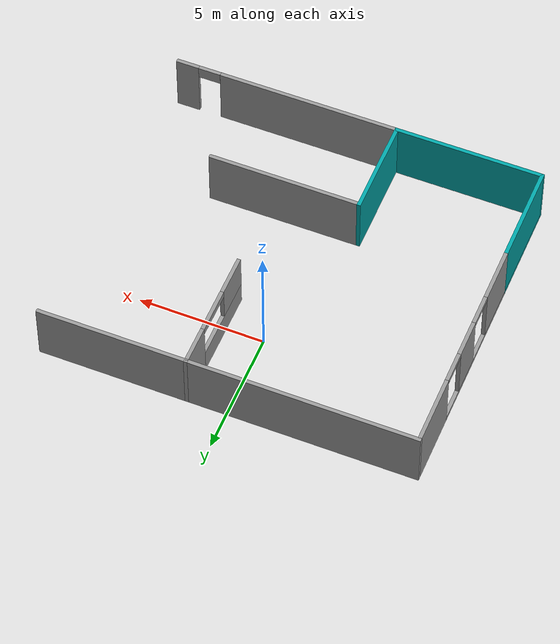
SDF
<sdf version="1.7">
 <model name="my_building_p4">
  <link name="Wall_27">
   <pose>0 3.46508 0 0 -0 3.14159</pose>
   <visual name="Wall_27_Visual">
    <pose>0 0 1.25 0 -0 0</pose>
    <geometry><box><size>15 0.15 2.5</size></box></geometry>
    <material>
     <script><uri>file://media/materials/scripts/gazebo.material</uri><name>Gazebo/Grey</name></script>
     <ambient>1 1 1 1</ambient>
     <shader type="pixel"/>
    </material>
    <meta><layer>0</layer></meta>
   </visual>
   <collision name="Wall_27_Collision">
    <pose>0 0 1.25 0 -0 0</pose>
    <geometry><box><size>15 0.15 2.5</size></box></geometry>
    <surface>
     <friction>
      <ode><mu>1</mu><mu2>1</mu2><fdir1>0 0 0</fdir1><slip1>0</slip1><slip2>0</slip2></ode>
      <torsional>
       <coefficient>1</coefficient>
       <patch_radius>0</patch_radius>
       <surface_radius>0</surface_radius>
       <use_patch_radius>1</use_patch_radius>
       <ode><slip>0</slip></ode>
      </torsional>
     </friction>
     <bounce><restitution_coefficient>0</restitution_coefficient><threshold>1e+06</threshold></bounce>
     <contact>
      <collide_without_contact>0</collide_without_contact>
      <collide_without_contact_bitmask>1</collide_without_contact_bitmask>
      <collide_bitmask>1</collide_bitmask>
      <ode>
       <soft_cfm>0</soft_cfm>
       <soft_erp>0.2</soft_erp>
       <kp>1e+13</kp>
       <kd>1</kd>
       <max_vel>0.01</max_vel>
       <min_depth>0</min_depth>
      </ode>
      <bullet>
       <split_impulse>1</split_impulse>
       <split_impulse_penetration_threshold>-0.01</split_impulse_penetration_threshold>
       <soft_cfm>0</soft_cfm>
       <soft_erp>0.2</soft_erp>
       <kp>1e+13</kp>
       <kd>1</kd>
      </bullet>
     </contact>
    </surface>
   </collision>
  </link>
  <link name="Wall_28">
   <pose>-7.42497 -2.95624 0 0 0 -1.5708</pose>
   <inertial>
    <mass>1</mass>
    <inertia><ixx>1</ixx><ixy>0</ixy><ixz>0</ixz><iyy>1</iyy><iyz>0</iyz><izz>1</izz></inertia>
   </inertial>
   <visual name="Wall_28_Visual_3">
    <pose>4.5 0 1.325 0 -0 0</pose>
    <geometry><box><size>4 0.15 2.35</size></box></geometry>
    <material>
     <script><uri>file://media/materials/scripts/gazebo.material</uri><name>Gazebo/Grey</name></script>
     <ambient>0 0.647 0.655 1</ambient>
     <shader type="pixel"><normal_map>__default__</normal_map></shader>
     <diffuse>0 0.647 0.655 1</diffuse>
     <specular>0.01 0.01 0.01 1</specular>
     <emissive>0 0 0 1</emissive>
    </material>
    <meta><layer>0</layer></meta>
   </visual>
   <visual name="Wall_28_Visual_2">
    <pose>4.5 0 0.075 0 -0 0</pose>
    <geometry><box><size>4 0.15 0.15</size></box></geometry>
    <material>
     <script><uri>file://media/materials/scripts/gazebo.material</uri><name>Gazebo/Grey</name></script>
     <ambient>0 0.647 0.655 1</ambient>
     <shader type="pixel"><normal_map>__default__</normal_map></shader>
     <diffuse>0 0.647 0.655 1</diffuse>
     <specular>0.01 0.01 0.01 1</specular>
     <emissive>0 0 0 1</emissive>
    </material>
    <meta><layer>0</layer></meta>
   </visual>
   <visual name="Wall_28_Visual_1">
    <pose>-0.6 0 0.075 0 -0 0</pose>
    <geometry><box><size>6.2 0.15 0.15</size></box></geometry>
    <material>
     <script><uri>file://media/materials/scripts/gazebo.material</uri><name>Gazebo/Grey</name></script>
     <ambient>1 1 1 1</ambient>
     <shader type="pixel"><normal_map>__default__</normal_map></shader>
     <diffuse>0.7 0.7 0.7 1</diffuse>
     <specular>0.01 0.01 0.01 1</specular>
     <emissive>0 0 0 1</emissive>
    </material>
    <meta><layer>0</layer></meta>
   </visual>
   <visual name="Wall_28_Visual_5">
    <pose>-1.663 0 1.325 0 -0 0</pose>
    <geometry><box><size>1.5 0.15 2.35</size></box></geometry>
    <material>
     <script><uri>file://media/materials/scripts/gazebo.material</uri><name>Gazebo/Grey</name></script>
     <ambient>1 1 1 1</ambient>
     <shader type="pixel"><normal_map>__default__</normal_map></shader>
     <diffuse>0.7 0.7 0.7 1</diffuse>
     <specular>0.01 0.01 0.01 1</specular>
     <emissive>0 0 0 1</emissive>
    </material>
    <meta><layer>0</layer></meta>
   </visual>
   <visual name="Wall_28_Visual_8">
    <pose>-3.038 0 2.4 0 -0 0</pose>
    <geometry><box><size>1.25 0.15 0.2</size></box></geometry>
    <material>
     <script><uri>file://media/materials/scripts/gazebo.material</uri><name>Gazebo/Grey</name></script>
     <ambient>1 1 1 1</ambient>
     <shader type="pixel"><normal_map>__default__</normal_map></shader>
     <diffuse>0.7 0.7 0.7 1</diffuse>
     <specular>0.01 0.01 0.01 1</specular>
     <emissive>0 0 0 1</emissive>
    </material>
    <meta><layer>0</layer></meta>
   </visual>
   <visual name="Wall_28_Visual_0">
    <pose>-5.012 0 1.25 0 -0 0</pose>
    <geometry><box><size>2.7 0.15 2.5</size></box></geometry>
    <material>
     <script><uri>file://media/materials/scripts/gazebo.material</uri><name>Gazebo/Grey</name></script>
     <ambient>1 1 1 1</ambient>
     <shader type="pixel"><normal_map>__default__</normal_map></shader>
     <diffuse>0.7 0.7 0.7 1</diffuse>
     <specular>0.01 0.01 0.01 1</specular>
     <emissive>0 0 0 1</emissive>
    </material>
    <meta><layer>0</layer></meta>
   </visual>
   <visual name="Wall_28_Visual_6">
    <pose>-0.288 0 2.4 0 -0 0</pose>
    <geometry><box><size>1.25 0.15 0.2</size></box></geometry>
    <material>
     <script><uri>file://media/materials/scripts/gazebo.material</uri><name>Gazebo/Grey</name></script>
     <ambient>1 1 1 1</ambient>
     <shader type="pixel"><normal_map>__default__</normal_map></shader>
     <diffuse>0.7 0.7 0.7 1</diffuse>
     <specular>0.01 0.01 0.01 1</specular>
     <emissive>0 0 0 1</emissive>
    </material>
    <meta><layer>0</layer></meta>
   </visual>
   <collision name="Wall_28_Collision_5">
    <pose>-1.663 0 1.325 0 -0 0</pose>
    <geometry><box><size>1.5 0.15 2.35</size></box></geometry>
    <surface>
     <friction>
      <ode><mu>1</mu><mu2>1</mu2><fdir1>0 0 0</fdir1><slip1>0</slip1><slip2>0</slip2></ode>
      <torsional>
       <coefficient>1</coefficient>
       <patch_radius>0</patch_radius>
       <surface_radius>0</surface_radius>
       <use_patch_radius>1</use_patch_radius>
       <ode><slip>0</slip></ode>
      </torsional>
     </friction>
     <bounce><restitution_coefficient>0</restitution_coefficient><threshold>1e+06</threshold></bounce>
     <contact>
      <collide_without_contact>0</collide_without_contact>
      <collide_without_contact_bitmask>1</collide_without_contact_bitmask>
      <collide_bitmask>1</collide_bitmask>
      <ode>
       <soft_cfm>0</soft_cfm>
       <soft_erp>0.2</soft_erp>
       <kp>1e+13</kp>
       <kd>1</kd>
       <max_vel>0.01</max_vel>
       <min_depth>0</min_depth>
      </ode>
      <bullet>
       <split_impulse>1</split_impulse>
       <split_impulse_penetration_threshold>-0.01</split_impulse_penetration_threshold>
       <soft_cfm>0</soft_cfm>
       <soft_erp>0.2</soft_erp>
       <kp>1e+13</kp>
       <kd>1</kd>
      </bullet>
     </contact>
    </surface>
   </collision>
   <collision name="Wall_28_Collision_6">
    <pose>-0.288 0 2.4 0 -0 0</pose>
    <geometry><box><size>1.25 0.15 0.2</size></box></geometry>
    <surface>
     <friction>
      <ode><mu>1</mu><mu2>1</mu2><fdir1>0 0 0</fdir1><slip1>0</slip1><slip2>0</slip2></ode>
      <torsional>
       <coefficient>1</coefficient>
       <patch_radius>0</patch_radius>
       <surface_radius>0</surface_radius>
       <use_patch_radius>1</use_patch_radius>
       <ode><slip>0</slip></ode>
      </torsional>
     </friction>
     <bounce><restitution_coefficient>0</restitution_coefficient><threshold>1e+06</threshold></bounce>
     <contact>
      <collide_without_contact>0</collide_without_contact>
      <collide_without_contact_bitmask>1</collide_without_contact_bitmask>
      <collide_bitmask>1</collide_bitmask>
      <ode>
       <soft_cfm>0</soft_cfm>
       <soft_erp>0.2</soft_erp>
       <kp>1e+13</kp>
       <kd>1</kd>
       <max_vel>0.01</max_vel>
       <min_depth>0</min_depth>
      </ode>
      <bullet>
       <split_impulse>1</split_impulse>
       <split_impulse_penetration_threshold>-0.01</split_impulse_penetration_threshold>
       <soft_cfm>0</soft_cfm>
       <soft_erp>0.2</soft_erp>
       <kp>1e+13</kp>
       <kd>1</kd>
      </bullet>
     </contact>
    </surface>
   </collision>
   <collision name="Wall_28_Collision_8">
    <pose>-3.038 0 2.4 0 -0 0</pose>
    <geometry><box><size>1.25 0.15 0.2</size></box></geometry>
    <surface>
     <friction>
      <ode><mu>1</mu><mu2>1</mu2><fdir1>0 0 0</fdir1><slip1>0</slip1><slip2>0</slip2></ode>
      <torsional>
       <coefficient>1</coefficient>
       <patch_radius>0</patch_radius>
       <surface_radius>0</surface_radius>
       <use_patch_radius>1</use_patch_radius>
       <ode><slip>0</slip></ode>
      </torsional>
     </friction>
     <bounce><restitution_coefficient>0</restitution_coefficient><threshold>1e+06</threshold></bounce>
     <contact>
      <collide_without_contact>0</collide_without_contact>
      <collide_without_contact_bitmask>1</collide_without_contact_bitmask>
      <collide_bitmask>1</collide_bitmask>
      <ode>
       <soft_cfm>0</soft_cfm>
       <soft_erp>0.2</soft_erp>
       <kp>1e+13</kp>
       <kd>1</kd>
       <max_vel>0.01</max_vel>
       <min_depth>0</min_depth>
      </ode>
      <bullet>
       <split_impulse>1</split_impulse>
       <split_impulse_penetration_threshold>-0.01</split_impulse_penetration_threshold>
       <soft_cfm>0</soft_cfm>
       <soft_erp>0.2</soft_erp>
       <kp>1e+13</kp>
       <kd>1</kd>
      </bullet>
     </contact>
    </surface>
   </collision>
   <collision name="Wall_28_Collision_0">
    <pose>-5.012 0 1.25 0 -0 0</pose>
    <geometry><box><size>2.7 0.15 2.5</size></box></geometry>
    <surface>
     <friction>
      <ode><mu>1</mu><mu2>1</mu2><fdir1>0 0 0</fdir1><slip1>0</slip1><slip2>0</slip2></ode>
      <torsional>
       <coefficient>1</coefficient>
       <patch_radius>0</patch_radius>
       <surface_radius>0</surface_radius>
       <use_patch_radius>1</use_patch_radius>
       <ode><slip>0</slip></ode>
      </torsional>
     </friction>
     <bounce><restitution_coefficient>0</restitution_coefficient><threshold>1e+06</threshold></bounce>
     <contact>
      <collide_without_contact>0</collide_without_contact>
      <collide_without_contact_bitmask>1</collide_without_contact_bitmask>
      <collide_bitmask>1</collide_bitmask>
      <ode>
       <soft_cfm>0</soft_cfm>
       <soft_erp>0.2</soft_erp>
       <kp>1e+13</kp>
       <kd>1</kd>
       <max_vel>0.01</max_vel>
       <min_depth>0</min_depth>
      </ode>
      <bullet>
       <split_impulse>1</split_impulse>
       <split_impulse_penetration_threshold>-0.01</split_impulse_penetration_threshold>
       <soft_cfm>0</soft_cfm>
       <soft_erp>0.2</soft_erp>
       <kp>1e+13</kp>
       <kd>1</kd>
      </bullet>
     </contact>
    </surface>
   </collision>
   <collision name="Wall_28_Collision_1">
    <pose>-0.6 0 0.075 0 -0 0</pose>
    <geometry><box><size>6.2 0.15 0.15</size></box></geometry>
    <surface>
     <friction>
      <ode><mu>1</mu><mu2>1</mu2><fdir1>0 0 0</fdir1><slip1>0</slip1><slip2>0</slip2></ode>
      <torsional>
       <coefficient>1</coefficient>
       <patch_radius>0</patch_radius>
       <surface_radius>0</surface_radius>
       <use_patch_radius>1</use_patch_radius>
       <ode><slip>0</slip></ode>
      </torsional>
     </friction>
     <bounce><restitution_coefficient>0</restitution_coefficient><threshold>1e+06</threshold></bounce>
     <contact>
      <collide_without_contact>0</collide_without_contact>
      <collide_without_contact_bitmask>1</collide_without_contact_bitmask>
      <collide_bitmask>1</collide_bitmask>
      <ode>
       <soft_cfm>0</soft_cfm>
       <soft_erp>0.2</soft_erp>
       <kp>1e+13</kp>
       <kd>1</kd>
       <max_vel>0.01</max_vel>
       <min_depth>0</min_depth>
      </ode>
      <bullet>
       <split_impulse>1</split_impulse>
       <split_impulse_penetration_threshold>-0.01</split_impulse_penetration_threshold>
       <soft_cfm>0</soft_cfm>
       <soft_erp>0.2</soft_erp>
       <kp>1e+13</kp>
       <kd>1</kd>
      </bullet>
     </contact>
    </surface>
   </collision>
   <collision name="Wall_28_Collision_3">
    <pose>4.5 0 1.325 0 -0 0</pose>
    <geometry><box><size>4 0.15 2.35</size></box></geometry>
    <surface>
     <friction>
      <ode><mu>1</mu><mu2>1</mu2><fdir1>0 0 0</fdir1><slip1>0</slip1><slip2>0</slip2></ode>
      <torsional>
       <coefficient>1</coefficient>
       <patch_radius>0</patch_radius>
       <surface_radius>0</surface_radius>
       <use_patch_radius>1</use_patch_radius>
       <ode><slip>0</slip></ode>
      </torsional>
     </friction>
     <bounce><restitution_coefficient>0</restitution_coefficient><threshold>1e+06</threshold></bounce>
     <contact>
      <collide_without_contact>0</collide_without_contact>
      <collide_without_contact_bitmask>1</collide_without_contact_bitmask>
      <collide_bitmask>1</collide_bitmask>
      <ode>
       <soft_cfm>0</soft_cfm>
       <soft_erp>0.2</soft_erp>
       <kp>1e+13</kp>
       <kd>1</kd>
       <max_vel>0.01</max_vel>
       <min_depth>0</min_depth>
      </ode>
      <bullet>
       <split_impulse>1</split_impulse>
       <split_impulse_penetration_threshold>-0.01</split_impulse_penetration_threshold>
       <soft_cfm>0</soft_cfm>
       <soft_erp>0.2</soft_erp>
       <kp>1e+13</kp>
       <kd>1</kd>
      </bullet>
     </contact>
    </surface>
   </collision>
   <collision name="Wall_28_Collision_2">
    <pose>4.5 0 0.075 0 -0 0</pose>
    <geometry><box><size>4 0.15 0.15</size></box></geometry>
    <surface>
     <friction>
      <ode><mu>1</mu><mu2>1</mu2><fdir1>0 0 0</fdir1><slip1>0</slip1><slip2>0</slip2></ode>
      <torsional>
       <coefficient>1</coefficient>
       <patch_radius>0</patch_radius>
       <surface_radius>0</surface_radius>
       <use_patch_radius>1</use_patch_radius>
       <ode><slip>0</slip></ode>
      </torsional>
     </friction>
     <bounce><restitution_coefficient>0</restitution_coefficient><threshold>1e+06</threshold></bounce>
     <contact>
      <collide_without_contact>0</collide_without_contact>
      <collide_without_contact_bitmask>1</collide_without_contact_bitmask>
      <collide_bitmask>1</collide_bitmask>
      <ode>
       <soft_cfm>0</soft_cfm>
       <soft_erp>0.2</soft_erp>
       <kp>1e+13</kp>
       <kd>1</kd>
       <max_vel>0.01</max_vel>
       <min_depth>0</min_depth>
      </ode>
      <bullet>
       <split_impulse>1</split_impulse>
       <split_impulse_penetration_threshold>-0.01</split_impulse_penetration_threshold>
       <soft_cfm>0</soft_cfm>
       <soft_erp>0.2</soft_erp>
       <kp>1e+13</kp>
       <kd>1</kd>
      </bullet>
     </contact>
    </surface>
   </collision>
  </link>
  <link name="Wall_28_clone">
   <pose>-7.42533 -5.43108 0 0 0 -1.5708</pose>
   <inertial>
    <mass>1</mass>
    <inertia><ixx>1</ixx><ixy>0</ixy><ixz>0</ixz><iyy>1</iyy><iyz>0</iyz><izz>1</izz></inertia>
   </inertial>
   <visual name="Wall_28_Visual_5">
    <pose>-1.058 0 1.325 0 -0 0</pose>
    <geometry><box><size>2.16667 0.15 2.35</size></box></geometry>
    <material>
     <script><uri>file://media/materials/scripts/gazebo.material</uri><name>Gazebo/Grey</name></script>
     <ambient>1 1 1 1</ambient>
     <shader type="pixel"><normal_map>__default__</normal_map></shader>
     <diffuse>0.7 0.7 0.7 1</diffuse>
     <specular>0.01 0.01 0.01 1</specular>
     <emissive>0 0 0 1</emissive>
    </material>
    <meta><layer>0</layer></meta>
   </visual>
   <collision name="Wall_28_Collision_5">
    <pose>-1.058 0 1.325 0 -0 0</pose>
    <geometry><box><size>2.16667 0.15 2.35</size></box></geometry>
    <surface>
     <friction>
      <ode><mu>1</mu><mu2>1</mu2><fdir1>0 0 0</fdir1><slip1>0</slip1><slip2>0</slip2></ode>
      <torsional>
       <coefficient>1</coefficient>
       <patch_radius>0</patch_radius>
       <surface_radius>0</surface_radius>
       <use_patch_radius>1</use_patch_radius>
       <ode><slip>0</slip></ode>
      </torsional>
     </friction>
     <bounce><restitution_coefficient>0</restitution_coefficient><threshold>1e+06</threshold></bounce>
     <contact>
      <collide_without_contact>0</collide_without_contact>
      <collide_without_contact_bitmask>1</collide_without_contact_bitmask>
      <collide_bitmask>1</collide_bitmask>
      <ode>
       <soft_cfm>0</soft_cfm>
       <soft_erp>0.2</soft_erp>
       <kp>1e+13</kp>
       <kd>1</kd>
       <max_vel>0.01</max_vel>
       <min_depth>0</min_depth>
      </ode>
      <bullet>
       <split_impulse>1</split_impulse>
       <split_impulse_penetration_threshold>-0.01</split_impulse_penetration_threshold>
       <soft_cfm>0</soft_cfm>
       <soft_erp>0.2</soft_erp>
       <kp>1e+13</kp>
       <kd>1</kd>
      </bullet>
     </contact>
    </surface>
   </collision>
  </link>
  <link name="Wall_29">
   <pose>-4.5 -9.38492 0 0 -0 0</pose>
   <inertial>
    <mass>1</mass>
    <inertia><ixx>1</ixx><ixy>0</ixy><ixz>0</ixz><iyy>1</iyy><iyz>0</iyz><izz>1</izz></inertia>
   </inertial>
   <visual name="Wall_29_Visual">
    <pose>0 0 1.25 0 -0 0</pose>
    <geometry><box><size>6 0.15 2.5</size></box></geometry>
    <material>
     <script><uri>file://media/materials/scripts/gazebo.material</uri><name>Gazebo/Grey</name></script>
     <ambient>0 0.647 0.655 1</ambient>
     <shader type="pixel"><normal_map>__default__</normal_map></shader>
     <diffuse>0 0.647 0.655 1</diffuse>
     <specular>0.01 0.01 0.01 1</specular>
     <emissive>0 0 0 1</emissive>
    </material>
    <meta><layer>0</layer></meta>
   </visual>
   <collision name="Wall_29_Collision">
    <pose>0 0 1.25 0 -0 0</pose>
    <geometry><box><size>6 0.15 2.5</size></box></geometry>
    <surface>
     <friction>
      <ode><mu>1</mu><mu2>1</mu2><fdir1>0 0 0</fdir1><slip1>0</slip1><slip2>0</slip2></ode>
      <torsional>
       <coefficient>1</coefficient>
       <patch_radius>0</patch_radius>
       <surface_radius>0</surface_radius>
       <use_patch_radius>1</use_patch_radius>
       <ode><slip>0</slip></ode>
      </torsional>
     </friction>
     <bounce><restitution_coefficient>0</restitution_coefficient><threshold>1e+06</threshold></bounce>
     <contact>
      <collide_without_contact>0</collide_without_contact>
      <collide_without_contact_bitmask>1</collide_without_contact_bitmask>
      <collide_bitmask>1</collide_bitmask>
      <ode>
       <soft_cfm>0</soft_cfm>
       <soft_erp>0.2</soft_erp>
       <kp>1e+13</kp>
       <kd>1</kd>
       <max_vel>0.01</max_vel>
       <min_depth>0</min_depth>
      </ode>
      <bullet>
       <split_impulse>1</split_impulse>
       <split_impulse_penetration_threshold>-0.01</split_impulse_penetration_threshold>
       <soft_cfm>0</soft_cfm>
       <soft_erp>0.2</soft_erp>
       <kp>1e+13</kp>
       <kd>1</kd>
      </bullet>
     </contact>
    </surface>
   </collision>
  </link>
  <link name="Wall_30">
   <pose>-1.57502 -7.45997 0 0 -0 1.57081</pose>
   <inertial>
    <mass>1</mass>
    <inertia><ixx>1</ixx><ixy>0</ixy><ixz>0</ixz><iyy>1</iyy><iyz>0</iyz><izz>1</izz></inertia>
   </inertial>
   <visual name="Wall_30_Visual">
    <pose>0 0 1.25 0 -0 0</pose>
    <geometry><box><size>3.99989 0.15 2.5</size></box></geometry>
    <material>
     <script><uri>file://media/materials/scripts/gazebo.material</uri><name>Gazebo/Grey</name></script>
     <ambient>0 0.647 0.655 1</ambient>
     <shader type="pixel"><normal_map>__default__</normal_map></shader>
     <diffuse>0 0.647 0.655 1</diffuse>
     <specular>0.01 0.01 0.01 1</specular>
     <emissive>0 0 0 1</emissive>
    </material>
    <meta><layer>0</layer></meta>
   </visual>
   <collision name="Wall_30_Collision">
    <pose>0 0 1.25 0 -0 0</pose>
    <geometry><box><size>3.99989 0.15 2.5</size></box></geometry>
    <surface>
     <friction>
      <ode><mu>1</mu><mu2>1</mu2><fdir1>0 0 0</fdir1><slip1>0</slip1><slip2>0</slip2></ode>
      <torsional>
       <coefficient>1</coefficient>
       <patch_radius>0</patch_radius>
       <surface_radius>0</surface_radius>
       <use_patch_radius>1</use_patch_radius>
       <ode><slip>0</slip></ode>
      </torsional>
     </friction>
     <bounce><restitution_coefficient>0</restitution_coefficient><threshold>1e+06</threshold></bounce>
     <contact>
      <collide_without_contact>0</collide_without_contact>
      <collide_without_contact_bitmask>1</collide_without_contact_bitmask>
      <collide_bitmask>1</collide_bitmask>
      <ode>
       <soft_cfm>0</soft_cfm>
       <soft_erp>0.2</soft_erp>
       <kp>1e+13</kp>
       <kd>1</kd>
       <max_vel>0.01</max_vel>
       <min_depth>0</min_depth>
      </ode>
      <bullet>
       <split_impulse>1</split_impulse>
       <split_impulse_penetration_threshold>-0.01</split_impulse_penetration_threshold>
       <soft_cfm>0</soft_cfm>
       <soft_erp>0.2</soft_erp>
       <kp>1e+13</kp>
       <kd>1</kd>
      </bullet>
     </contact>
    </surface>
   </collision>
  </link>
  <link name="Wall_32">
   <pose>2.925 -9.38492 0 0 -0 0</pose>
   <inertial>
    <mass>1</mass>
    <inertia><ixx>1</ixx><ixy>0</ixy><ixz>0</ixz><iyy>1</iyy><iyz>0</iyz><izz>1</izz></inertia>
   </inertial>
   <visual name="Wall_32_Visual_1">
    <pose>4.11059 0 1.25 0 -0 0</pose>
    <geometry><box><size>0.928826 0.15 2.5</size></box></geometry>
    <material>
     <script><uri>file://media/materials/scripts/gazebo.material</uri><name>Gazebo/Grey</name></script>
     <ambient>1 1 1 1</ambient>
     <shader type="pixel"><normal_map>__default__</normal_map></shader>
     <diffuse>0.7 0.7 0.7 1</diffuse>
     <specular>0.01 0.01 0.01 1</specular>
     <emissive>0 0 0 1</emissive>
    </material>
    <meta><layer>0</layer></meta>
   </visual>
   <visual name="Wall_32_Visual_2">
    <pose>3.19617 0 2.25 0 -0 0</pose>
    <geometry><box><size>0.9 0.15 0.5</size></box></geometry>
    <material>
     <script><uri>file://media/materials/scripts/gazebo.material</uri><name>Gazebo/Grey</name></script>
     <ambient>1 1 1 1</ambient>
     <shader type="pixel"><normal_map>__default__</normal_map></shader>
     <diffuse>0.7 0.7 0.7 1</diffuse>
     <specular>0.01 0.01 0.01 1</specular>
     <emissive>0 0 0 1</emissive>
    </material>
    <meta><layer>0</layer></meta>
   </visual>
   <visual name="Wall_32_Visual_0">
    <pose>-0.84 0 1.25 0 -0 0</pose>
    <geometry><box><size>7.17 0.15 2.5</size></box></geometry>
    <material>
     <script><uri>file://media/materials/scripts/gazebo.material</uri><name>Gazebo/Grey</name></script>
     <ambient>1 1 1 1</ambient>
     <shader type="pixel"><normal_map>__default__</normal_map></shader>
     <diffuse>0.7 0.7 0.7 1</diffuse>
     <specular>0.01 0.01 0.01 1</specular>
     <emissive>0 0 0 1</emissive>
    </material>
    <meta><layer>0</layer></meta>
   </visual>
   <collision name="Wall_32_Collision_1">
    <pose>4.11059 0 1.25 0 -0 0</pose>
    <geometry><box><size>0.928826 0.15 2.5</size></box></geometry>
    <surface>
     <friction>
      <ode><mu>1</mu><mu2>1</mu2><fdir1>0 0 0</fdir1><slip1>0</slip1><slip2>0</slip2></ode>
      <torsional>
       <coefficient>1</coefficient>
       <patch_radius>0</patch_radius>
       <surface_radius>0</surface_radius>
       <use_patch_radius>1</use_patch_radius>
       <ode><slip>0</slip></ode>
      </torsional>
     </friction>
     <bounce><restitution_coefficient>0</restitution_coefficient><threshold>1e+06</threshold></bounce>
     <contact>
      <collide_without_contact>0</collide_without_contact>
      <collide_without_contact_bitmask>1</collide_without_contact_bitmask>
      <collide_bitmask>1</collide_bitmask>
      <ode>
       <soft_cfm>0</soft_cfm>
       <soft_erp>0.2</soft_erp>
       <kp>1e+13</kp>
       <kd>1</kd>
       <max_vel>0.01</max_vel>
       <min_depth>0</min_depth>
      </ode>
      <bullet>
       <split_impulse>1</split_impulse>
       <split_impulse_penetration_threshold>-0.01</split_impulse_penetration_threshold>
       <soft_cfm>0</soft_cfm>
       <soft_erp>0.2</soft_erp>
       <kp>1e+13</kp>
       <kd>1</kd>
      </bullet>
     </contact>
    </surface>
   </collision>
   <collision name="Wall_32_Collision_0">
    <pose>-0.84 0 1.25 0 -0 0</pose>
    <geometry><box><size>7.17 0.15 2.5</size></box></geometry>
    <surface>
     <friction>
      <ode><mu>1</mu><mu2>1</mu2><fdir1>0 0 0</fdir1><slip1>0</slip1><slip2>0</slip2></ode>
      <torsional>
       <coefficient>1</coefficient>
       <patch_radius>0</patch_radius>
       <surface_radius>0</surface_radius>
       <use_patch_radius>1</use_patch_radius>
       <ode><slip>0</slip></ode>
      </torsional>
     </friction>
     <bounce><restitution_coefficient>0</restitution_coefficient><threshold>1e+06</threshold></bounce>
     <contact>
      <collide_without_contact>0</collide_without_contact>
      <collide_without_contact_bitmask>1</collide_without_contact_bitmask>
      <collide_bitmask>1</collide_bitmask>
      <ode>
       <soft_cfm>0</soft_cfm>
       <soft_erp>0.2</soft_erp>
       <kp>1e+13</kp>
       <kd>1</kd>
       <max_vel>0.01</max_vel>
       <min_depth>0</min_depth>
      </ode>
      <bullet>
       <split_impulse>1</split_impulse>
       <split_impulse_penetration_threshold>-0.01</split_impulse_penetration_threshold>
       <soft_cfm>0</soft_cfm>
       <soft_erp>0.2</soft_erp>
       <kp>1e+13</kp>
       <kd>1</kd>
      </bullet>
     </contact>
    </surface>
   </collision>
   <collision name="Wall_32_Collision_2">
    <pose>3.19617 0 2.25 0 -0 0</pose>
    <geometry><box><size>0.9 0.15 0.5</size></box></geometry>
    <surface>
     <friction>
      <ode><mu>1</mu><mu2>1</mu2><fdir1>0 0 0</fdir1><slip1>0</slip1><slip2>0</slip2></ode>
      <torsional>
       <coefficient>1</coefficient>
       <patch_radius>0</patch_radius>
       <surface_radius>0</surface_radius>
       <use_patch_radius>1</use_patch_radius>
       <ode><slip>0</slip></ode>
      </torsional>
     </friction>
     <bounce><restitution_coefficient>0</restitution_coefficient><threshold>1e+06</threshold></bounce>
     <contact>
      <collide_without_contact>0</collide_without_contact>
      <collide_without_contact_bitmask>1</collide_without_contact_bitmask>
      <collide_bitmask>1</collide_bitmask>
      <ode>
       <soft_cfm>0</soft_cfm>
       <soft_erp>0.2</soft_erp>
       <kp>1e+13</kp>
       <kd>1</kd>
       <max_vel>0.01</max_vel>
       <min_depth>0</min_depth>
      </ode>
      <bullet>
       <split_impulse>1</split_impulse>
       <split_impulse_penetration_threshold>-0.01</split_impulse_penetration_threshold>
       <soft_cfm>0</soft_cfm>
       <soft_erp>0.2</soft_erp>
       <kp>1e+13</kp>
       <kd>1</kd>
      </bullet>
     </contact>
    </surface>
   </collision>
  </link>
  <link name="Wall_36">
   <pose>1.49997 -5.53503 0 0 -0 0</pose>
   <inertial>
    <mass>1</mass>
    <inertia><ixx>1</ixx><ixy>0</ixy><ixz>0</ixz><iyy>1</iyy><iyz>0</iyz><izz>1</izz></inertia>
   </inertial>
   <visual name="Wall_36_Visual">
    <pose>0 0 1.25 0 -0 0</pose>
    <geometry><box><size>6 0.15 2.5</size></box></geometry>
    <material>
     <script><uri>file://media/materials/scripts/gazebo.material</uri><name>Gazebo/Grey</name></script>
     <ambient>1 1 1 1</ambient>
     <shader type="pixel"><normal_map>__default__</normal_map></shader>
     <diffuse>0.7 0.7 0.7 1</diffuse>
     <specular>0.01 0.01 0.01 1</specular>
     <emissive>0 0 0 1</emissive>
    </material>
    <meta><layer>0</layer></meta>
   </visual>
   <collision name="Wall_36_Collision">
    <pose>0 0 1.25 0 -0 0</pose>
    <geometry><box><size>6 0.15 2.5</size></box></geometry>
    <surface>
     <friction>
      <ode><mu>1</mu><mu2>1</mu2><fdir1>0 0 0</fdir1><slip1>0</slip1><slip2>0</slip2></ode>
      <torsional>
       <coefficient>1</coefficient>
       <patch_radius>0</patch_radius>
       <surface_radius>0</surface_radius>
       <use_patch_radius>1</use_patch_radius>
       <ode><slip>0</slip></ode>
      </torsional>
     </friction>
     <bounce><restitution_coefficient>0</restitution_coefficient><threshold>1e+06</threshold></bounce>
     <contact>
      <collide_without_contact>0</collide_without_contact>
      <collide_without_contact_bitmask>1</collide_without_contact_bitmask>
      <collide_bitmask>1</collide_bitmask>
      <ode>
       <soft_cfm>0</soft_cfm>
       <soft_erp>0.2</soft_erp>
       <kp>1e+13</kp>
       <kd>1</kd>
       <max_vel>0.01</max_vel>
       <min_depth>0</min_depth>
      </ode>
      <bullet>
       <split_impulse>1</split_impulse>
       <split_impulse_penetration_threshold>-0.01</split_impulse_penetration_threshold>
       <soft_cfm>0</soft_cfm>
       <soft_erp>0.2</soft_erp>
       <kp>1e+13</kp>
       <kd>1</kd>
      </bullet>
     </contact>
    </surface>
   </collision>
  </link>
  <link name="Wall_42">
   <pose>1.575 1.04008 0 0 0 -1.5708</pose>
   <visual name="Wall_42_Visual_2">
    <pose>1.69623 0 1.75 0 -0 0</pose>
    <geometry><box><size>1.60754 0.15 1.5</size></box></geometry>
    <material>
     <script><uri>file://media/materials/scripts/gazebo.material</uri><name>Gazebo/Grey</name></script>
     <ambient>1 1 1 1</ambient>
     <shader type="pixel"/>
    </material>
    <meta><layer>0</layer></meta>
   </visual>
   <visual name="Wall_42_Visual_1">
    <pose>0.796232 0 0.5 0 -0 0</pose>
    <geometry><box><size>3.40754 0.15 1</size></box></geometry>
    <material>
     <script><uri>file://media/materials/scripts/gazebo.material</uri><name>Gazebo/Grey</name></script>
     <ambient>1 1 1 1</ambient>
     <shader type="pixel"/>
    </material>
    <meta><layer>0</layer></meta>
   </visual>
   <visual name="Wall_42_Visual_0">
    <pose>-1.70377 0 1.25 0 -0 0</pose>
    <geometry><box><size>1.59246 0.15 2.5</size></box></geometry>
    <material>
     <script><uri>file://media/materials/scripts/gazebo.material</uri><name>Gazebo/Grey</name></script>
     <ambient>1 1 1 1</ambient>
     <shader type="pixel"/>
    </material>
    <meta><layer>0</layer></meta>
   </visual>
   <visual name="Wall_42_Visual_3">
    <pose>-0.007537 0 2.35 0 -0 0</pose>
    <geometry><box><size>1.8 0.15 0.3</size></box></geometry>
    <material>
     <script><uri>file://media/materials/scripts/gazebo.material</uri><name>Gazebo/Grey</name></script>
     <ambient>1 1 1 1</ambient>
     <shader type="pixel"/>
    </material>
    <meta><layer>0</layer></meta>
   </visual>
   <collision name="Wall_42_Collision_1">
    <pose>0.796232 0 0.5 0 -0 0</pose>
    <geometry><box><size>3.40754 0.15 1</size></box></geometry>
    <surface>
     <friction>
      <ode><mu>1</mu><mu2>1</mu2><fdir1>0 0 0</fdir1><slip1>0</slip1><slip2>0</slip2></ode>
      <torsional>
       <coefficient>1</coefficient>
       <patch_radius>0</patch_radius>
       <surface_radius>0</surface_radius>
       <use_patch_radius>1</use_patch_radius>
       <ode><slip>0</slip></ode>
      </torsional>
     </friction>
     <bounce><restitution_coefficient>0</restitution_coefficient><threshold>1e+06</threshold></bounce>
     <contact>
      <collide_without_contact>0</collide_without_contact>
      <collide_without_contact_bitmask>1</collide_without_contact_bitmask>
      <collide_bitmask>1</collide_bitmask>
      <ode>
       <soft_cfm>0</soft_cfm>
       <soft_erp>0.2</soft_erp>
       <kp>1e+13</kp>
       <kd>1</kd>
       <max_vel>0.01</max_vel>
       <min_depth>0</min_depth>
      </ode>
      <bullet>
       <split_impulse>1</split_impulse>
       <split_impulse_penetration_threshold>-0.01</split_impulse_penetration_threshold>
       <soft_cfm>0</soft_cfm>
       <soft_erp>0.2</soft_erp>
       <kp>1e+13</kp>
       <kd>1</kd>
      </bullet>
     </contact>
    </surface>
   </collision>
   <collision name="Wall_42_Collision_0">
    <pose>-1.70377 0 1.25 0 -0 0</pose>
    <geometry><box><size>1.59246 0.15 2.5</size></box></geometry>
    <surface>
     <friction>
      <ode><mu>1</mu><mu2>1</mu2><fdir1>0 0 0</fdir1><slip1>0</slip1><slip2>0</slip2></ode>
      <torsional>
       <coefficient>1</coefficient>
       <patch_radius>0</patch_radius>
       <surface_radius>0</surface_radius>
       <use_patch_radius>1</use_patch_radius>
       <ode><slip>0</slip></ode>
      </torsional>
     </friction>
     <bounce><restitution_coefficient>0</restitution_coefficient><threshold>1e+06</threshold></bounce>
     <contact>
      <collide_without_contact>0</collide_without_contact>
      <collide_without_contact_bitmask>1</collide_without_contact_bitmask>
      <collide_bitmask>1</collide_bitmask>
      <ode>
       <soft_cfm>0</soft_cfm>
       <soft_erp>0.2</soft_erp>
       <kp>1e+13</kp>
       <kd>1</kd>
       <max_vel>0.01</max_vel>
       <min_depth>0</min_depth>
      </ode>
      <bullet>
       <split_impulse>1</split_impulse>
       <split_impulse_penetration_threshold>-0.01</split_impulse_penetration_threshold>
       <soft_cfm>0</soft_cfm>
       <soft_erp>0.2</soft_erp>
       <kp>1e+13</kp>
       <kd>1</kd>
      </bullet>
     </contact>
    </surface>
   </collision>
   <collision name="Wall_42_Collision_2">
    <pose>1.69623 0 1.75 0 -0 0</pose>
    <geometry><box><size>1.60754 0.15 1.5</size></box></geometry>
    <surface>
     <friction>
      <ode><mu>1</mu><mu2>1</mu2><fdir1>0 0 0</fdir1><slip1>0</slip1><slip2>0</slip2></ode>
      <torsional>
       <coefficient>1</coefficient>
       <patch_radius>0</patch_radius>
       <surface_radius>0</surface_radius>
       <use_patch_radius>1</use_patch_radius>
       <ode><slip>0</slip></ode>
      </torsional>
     </friction>
     <bounce><restitution_coefficient>0</restitution_coefficient><threshold>1e+06</threshold></bounce>
     <contact>
      <collide_without_contact>0</collide_without_contact>
      <collide_without_contact_bitmask>1</collide_without_contact_bitmask>
      <collide_bitmask>1</collide_bitmask>
      <ode>
       <soft_cfm>0</soft_cfm>
       <soft_erp>0.2</soft_erp>
       <kp>1e+13</kp>
       <kd>1</kd>
       <max_vel>0.01</max_vel>
       <min_depth>0</min_depth>
      </ode>
      <bullet>
       <split_impulse>1</split_impulse>
       <split_impulse_penetration_threshold>-0.01</split_impulse_penetration_threshold>
       <soft_cfm>0</soft_cfm>
       <soft_erp>0.2</soft_erp>
       <kp>1e+13</kp>
       <kd>1</kd>
      </bullet>
     </contact>
    </surface>
   </collision>
   <collision name="Wall_42_Collision_3">
    <pose>-0.007537 0 2.35 0 -0 0</pose>
    <geometry><box><size>1.8 0.15 0.3</size></box></geometry>
    <surface>
     <friction>
      <ode><mu>1</mu><mu2>1</mu2><fdir1>0 0 0</fdir1><slip1>0</slip1><slip2>0</slip2></ode>
      <torsional>
       <coefficient>1</coefficient>
       <patch_radius>0</patch_radius>
       <surface_radius>0</surface_radius>
       <use_patch_radius>1</use_patch_radius>
       <ode><slip>0</slip></ode>
      </torsional>
     </friction>
     <bounce><restitution_coefficient>0</restitution_coefficient><threshold>1e+06</threshold></bounce>
     <contact>
      <collide_without_contact>0</collide_without_contact>
      <collide_without_contact_bitmask>1</collide_without_contact_bitmask>
      <collide_bitmask>1</collide_bitmask>
      <ode>
       <soft_cfm>0</soft_cfm>
       <soft_erp>0.2</soft_erp>
       <kp>1e+13</kp>
       <kd>1</kd>
       <max_vel>0.01</max_vel>
       <min_depth>0</min_depth>
      </ode>
      <bullet>
       <split_impulse>1</split_impulse>
       <split_impulse_penetration_threshold>-0.01</split_impulse_penetration_threshold>
       <soft_cfm>0</soft_cfm>
       <soft_erp>0.2</soft_erp>
       <kp>1e+13</kp>
       <kd>1</kd>
      </bullet>
     </contact>
    </surface>
   </collision>
  </link>
  <static>1</static>
 </model>
</sdf>
